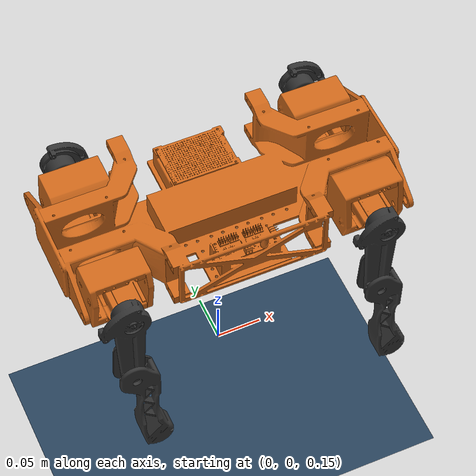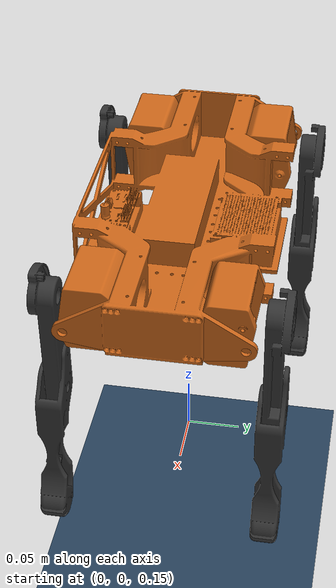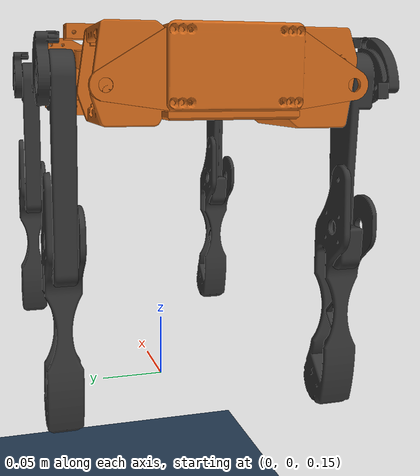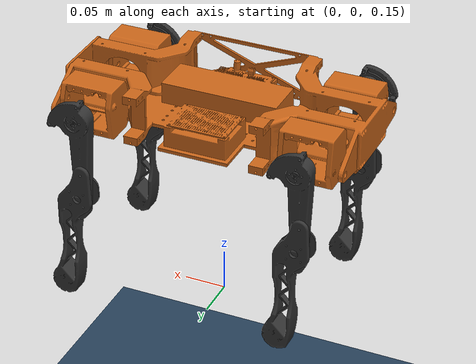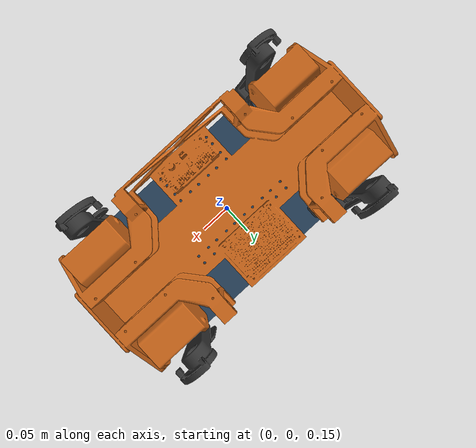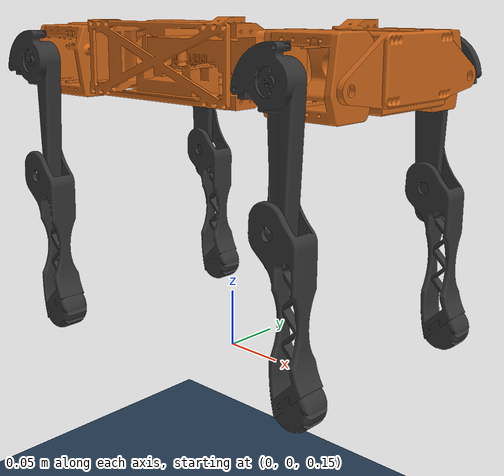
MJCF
<mujoco model="mini-spot scene">
  <include file="mini_spot.xml"/>

  <statistic center="0 0 0.1" extent="0.8"/>

  <visual>
    <rgba haze="0.15 0.25 0.35 1"/>
    <global azimuth="120" elevation="-20"/>
  </visual>

  <asset>
    <texture type="skybox" builtin="gradient" rgb1="0.3 0.5 0.7" rgb2="0 0 0" width="512" height="3072"/>
    <texture type="2d" name="groundplane" builtin="checker" mark="edge" rgb1="0.2 0.3 0.4" rgb2="0.1 0.2 0.3"
      markrgb="0.8 0.8 0.8" width="300" height="300"/>
    <material name="groundplane" texture="groundplane" texuniform="true" texrepeat="5 5" reflectance="0"/>
  </asset>

  <worldbody>
    <light pos="0 0 1.5" dir="0 0 -1" directional="true"/>
    <geom name="floor" size="0 0 0.05" type="plane" material="groundplane"/>
  </worldbody>
</mujoco>

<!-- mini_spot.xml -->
<mujoco model="mini-spot">
  <compiler angle="radian" meshdir="CAD_Files/STL_combined" autolimits="true"/>

  <option cone="elliptic" impratio="100"/>

  <default>
    <default class="mini-spot">
      <geom friction="0.6" margin="0.001"/>
      <joint axis="0 1 0" damping="2" armature="0.01" frictionloss="0.2"/>
      <position kp="100" forcerange="-33.5 33.5"/>
      <default class="abduction">
        <joint axis="1 0 0" damping="1" range="0 0"/>
        <position ctrlrange="-0.802851 0.802851"/>
      </default>
      <default class="hip">
        <joint range="-0.785 3.14"/>
        <position ctrlrange="-0.785 3.14"/>
      </default>
      <default class="knee">
        <joint range="-2.44 -0.916298"/>
        <position ctrlrange="-2.44 -0.916298"/>
      </default>
      <default class="visual">
        <geom type="mesh" contype="0" conaffinity="0" group="2" material="dark" />
      </default>
      <default class="collision">
        <geom group="3" type="capsule" rgba="0.8 0.2 0.2 0.2" density="1240"/>
        <default class="hip_left">
          <geom size="0.025 0.03 0.025" quat="1 1 0 0" type="box" pos="0 0 0"  mass = "0.200"/>
        </default>
        <default class="hip_right">
          <geom size="0.025 0.03 0.025" quat="1 1 0 0" type="box" pos="0 0 0"  mass="0.200"/>
        </default>
        <default class="thigh1">
          <geom size="0.010" fromto="0 0 0 0 0 -0.095"/>
        </default>
        <default class="thigh2">
          <geom size="0.015" fromto="0 0 0 -0.02 0 -0.1"/>
        </default>
        <default class="thigh3">
          <geom size="0.015" fromto="-0.02 0 -0.16 0 0 -0.2"/>
        </default>
        <default class="calf1">
          <geom size="0.015" fromto="0 0 0 0.02 0 -0.115"/>
        </default>
        <default class="calf2">
          <geom size="0.01" fromto="0.02 0 -0.13 0 0 -0.2"/>
        </default>
        <default class="foot">
          <geom type="sphere" size="0.018" pos="0.02 0 -0.12" priority="1" solimp="0.015 1 0.02" condim="6"
            friction="0.8 0.02 0.01"/>
        </default>
      </default>
    </default>
  </default>

  <asset>
    <material name="dark" specular="0" shininess="0.25" rgba="0.2 0.2 0.2 1"/>
    <material name="orange" specular="0" shininess="0.5" rgba="0.8 0.4 0.1 1"/>
    <mesh class="mini-spot" name = "calf" file="Leg_Left.stl" scale="1e-3 1e-3 1e-3"/>
    <mesh class="mini-spot" name = "hip" file="Hip_Left.stl" scale="1e-3 1e-3 1e-3"/>
    <mesh class="mini-spot" name = "thigh" file="Thigh_Left.stl" scale="1e-3 1e-3 1e-3"/>
    <mesh class="mini-spot" name = "thigh_mirror" file="Thigh_Right.stl" scale="1e-3 1e-3 1e-3"/>
    <mesh class="mini-spot" name = "trunk" file="Body_lowres.stl" scale="1e-3 1e-3 1e-3"/>
  </asset>

  <worldbody>
    <light name="spotlight" mode="targetbodycom" target="trunk" pos="0 -1 2"/>
    <body name="trunk" pos="0 0 0.40" childclass="mini-spot">
      <freejoint/>

      <site name="imu_site" pos="0 0 0" size="0.01" rgba="1 0 0 1"/>

      <geom class="visual" mesh="trunk" pos = "0 0.025 0" quat="1 0 0 0" material="orange"/>
      <geom class="collision" size="0.09 0.07 0.025" type="box"/>

      <!-- Point mass payload -->

      <!-- ════════════════════════════════════════════════════════════════
           FRONT RIGHT LEG
      ════════════════════════════════════════════════════════════════ -->
      <body name="FR_hip" pos="0.135 -0.060 0">
        <geom class="visual" mesh="hip" quat="0 1 0 0" material="orange" />
        <geom class="hip_right"/>
        <body name="FR_thigh" pos="0 -0.046 0">
          <joint class="hip" name="FR_thigh_joint"/>
          <geom class="visual" mesh="thigh_mirror" quat="0 0.3826834 0 0.9238795"/>
          <geom class="thigh1"/>
          <body name="FR_calf" pos="0 0.01 -0.1">
            <joint class="knee" name="FR_calf_joint"/>
            <geom class="visual" mesh="calf" quat="0.65328148 0.65328148 -0.27059805 0.27059805"/>
            <geom class="calf1"/>
            <geom class="foot"/>
            <!-- Foot contact site — matches foot geom position in calf frame -->
            <site name="FR_foot_site" pos="0.02 0 -0.12" size="0.01" rgba="0 1 0 1"/>
          </body>
        </body>
      </body>

      <!-- ════════════════════════════════════════════════════════════════
           FRONT LEFT LEG
      ════════════════════════════════════════════════════════════════ -->
      <body name="FL_hip" pos="0.135 0.060 0">
        <geom class="visual" mesh="hip" material="orange"/>
        <geom class="hip_left"/>
        <body name="FL_thigh" pos="0 0.046 0">
          <joint class="hip" name="FL_thigh_joint"/>
          <geom class="visual" mesh="thigh" quat="0 -0.3826834 0 0.9238795"/>
          <geom class="thigh1"/>
          <body name="FL_calf" pos="0 -0.01 -0.1">
            <joint class="knee" name="FL_calf_joint"/>
            <geom class="visual" mesh="calf" quat="0.65328148 0.65328148 -0.27059805 0.27059805"/>
            <geom class="calf1"/>
            <geom class="foot"/>
            <!-- Foot contact site — matches foot geom position in calf frame -->
            <site name="FL_foot_site" pos="0.02 0 -0.12" size="0.01" rgba="0 1 0 1"/>
          </body>
        </body>
      </body>

      <!-- ════════════════════════════════════════════════════════════════
           REAR RIGHT LEG
      ════════════════════════════════════════════════════════════════ -->
      <body name="RR_hip" pos="-0.135 -0.060 0">
        <geom class="visual" quat="0 0 0 -1" mesh="hip" material="orange"/>
        <geom class="hip_right"/>
        <body name="RR_thigh" pos="0 -0.046 0">
          <joint class="hip" name="RR_thigh_joint"/>
          <geom class="visual" mesh="thigh_mirror" quat="0 0.3826834 0 0.9238795"/>
          <geom class="thigh1"/>
          <body name="RR_calf" pos="0 0.01 -0.1">
            <joint class="knee" name="RR_calf_joint"/>
            <geom class="visual" mesh="calf" quat="0.65328148 0.65328148 -0.27059805 0.27059805"/>
            <geom class="calf1"/>
            <geom class="foot"/>
            <!-- Foot contact site — matches foot geom position in calf frame -->
            <site name="RR_foot_site" pos="0.02 0 -0.12" size="0.01" rgba="0 1 0 1"/>
          </body>
        </body>
      </body>

      <!-- ════════════════════════════════════════════════════════════════
           REAR LEFT LEG
      ════════════════════════════════════════════════════════════════ -->
      <body name="RL_hip" pos="-0.13 0.060 0">
        <geom class="visual" quat="0 0 1 0" mesh="hip" material="orange"/>
        <geom class="hip_left"/>
        <body name="RL_thigh" pos="0 0.046 0">
          <joint class="hip" name="RL_thigh_joint"/>
          <geom class="visual" mesh="thigh" quat="0 -0.3826834 0 0.9238795"/>
          <geom class="thigh1"/>
          <body name="RL_calf" pos="0 -0.01 -0.1">
            <joint class="knee" name="RL_calf_joint"/>
            <geom class="visual" mesh="calf" quat="0.65328148 0.65328148 -0.27059805 0.27059805"/>
            <geom class="calf1"/>
            <geom class="foot"/>
            <!-- Foot contact site — matches foot geom position in calf frame -->
            <site name="RL_foot_site" pos="0.02 0 -0.12" size="0.01" rgba="0 1 0 1"/>
          </body>
        </body>
      </body>

    </body>
  </worldbody>

  <actuator>
    <!-- HAA (abduction) joints are commented out — range locked to 0, not actuated -->
    <position class="hip"  name="FR_thigh" joint="FR_thigh_joint"/>
    <position class="knee" name="FR_calf"  joint="FR_calf_joint"/>
    <position class="hip"  name="FL_thigh" joint="FL_thigh_joint"/>
    <position class="knee" name="FL_calf"  joint="FL_calf_joint"/>
    <position class="hip"  name="RR_thigh" joint="RR_thigh_joint"/>
    <position class="knee" name="RR_calf"  joint="RR_calf_joint"/>
    <position class="hip"  name="RL_thigh" joint="RL_thigh_joint"/>
    <position class="knee" name="RL_calf"  joint="RL_calf_joint"/>
  </actuator>

  <sensor>
    <!-- IMU — trunk orientation and angular velocity -->
    <accelerometer name="imu_accel" site="imu_site"/>
    <gyro          name="imu_gyro"  site="imu_site"/>

    <!-- Foot contact forces — one per leg, 3-axis (N) -->
    <force name="FR_foot_force" site="FR_foot_site"/>
    <force name="FL_foot_force" site="FL_foot_site"/>
    <force name="RR_foot_force" site="RR_foot_site"/>
    <force name="RL_foot_force" site="RL_foot_site"/>
  </sensor>

  <keyframe>
    <key name="home"  ctrl="3.14 -2.17 3.14 -2.17 3.14 -2.17 3.14 -2.17"/>
    <key name="start" ctrl="0.687 0 0.687 0 0.687 0 0.687 0"/>
  </keyframe>

</mujoco>
